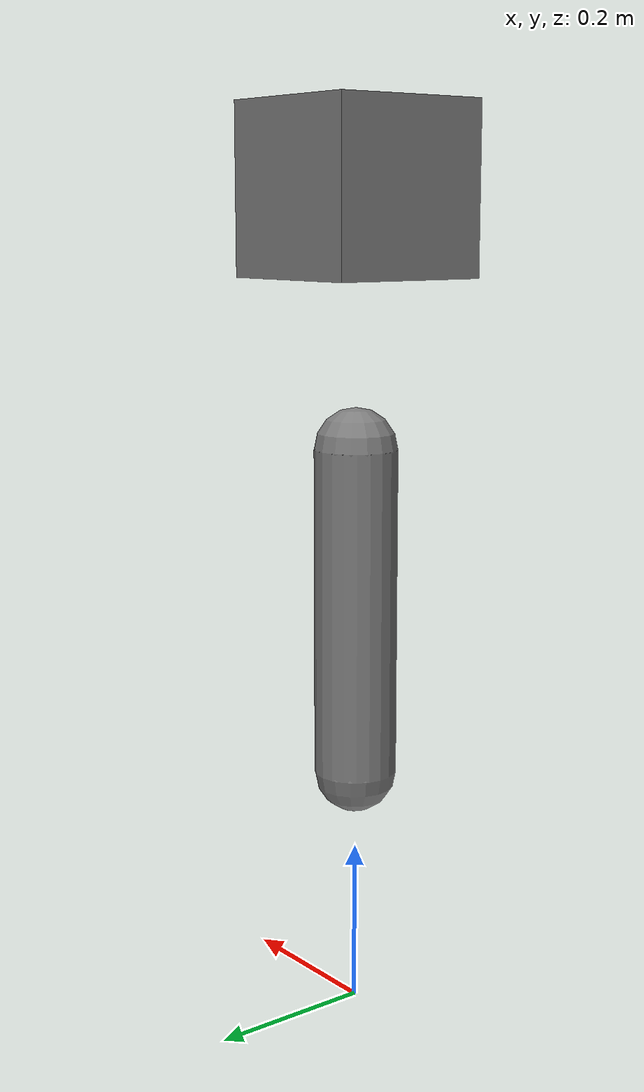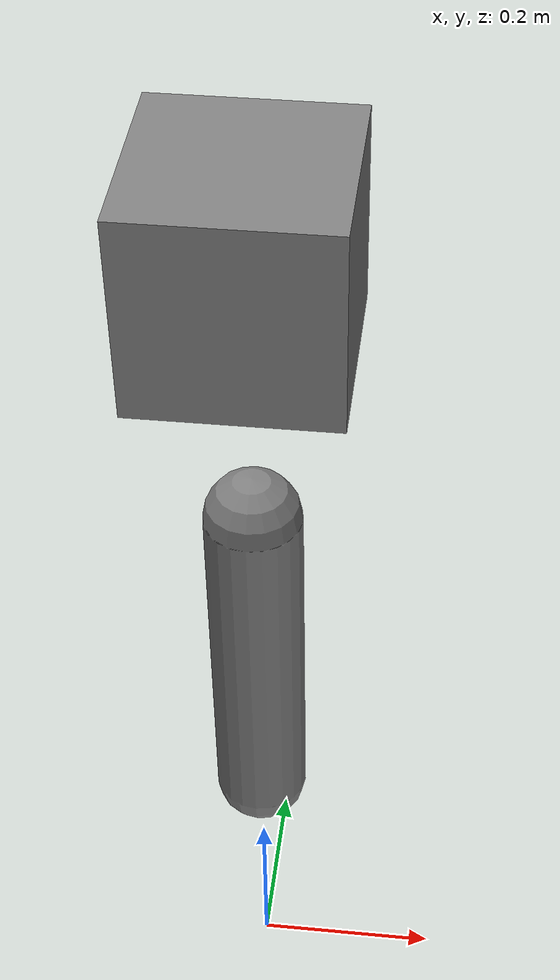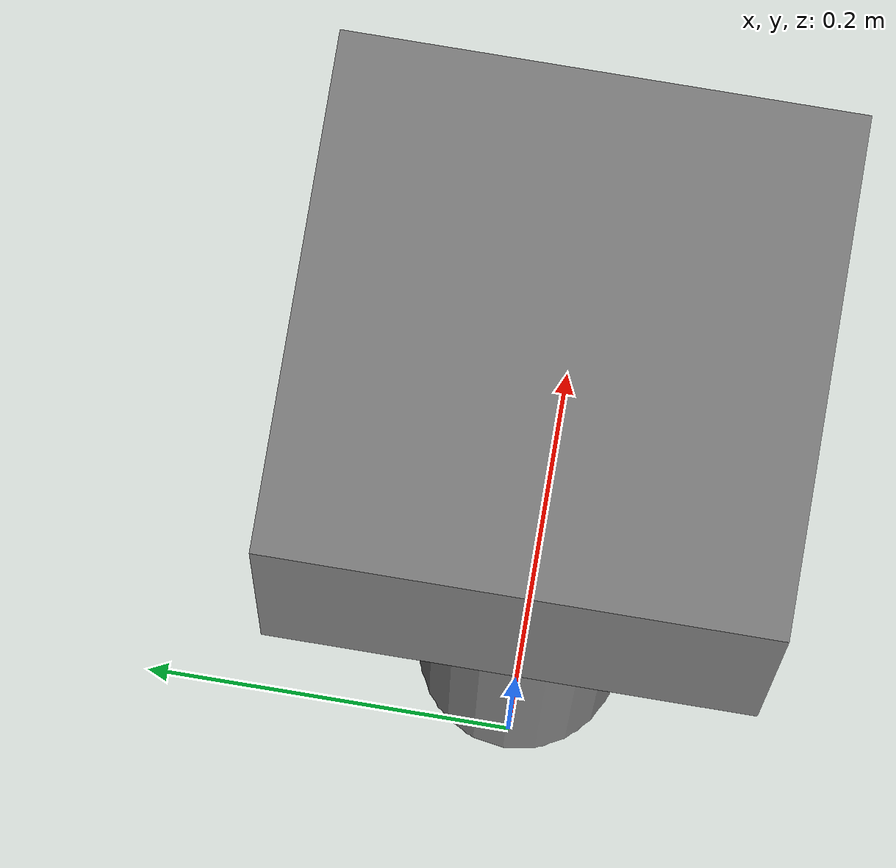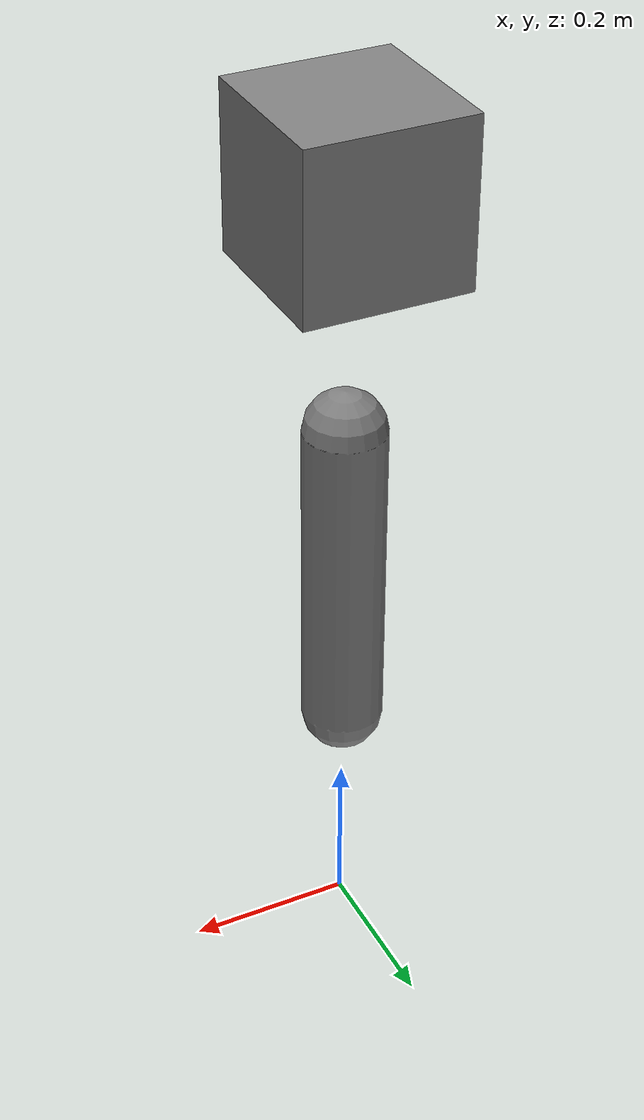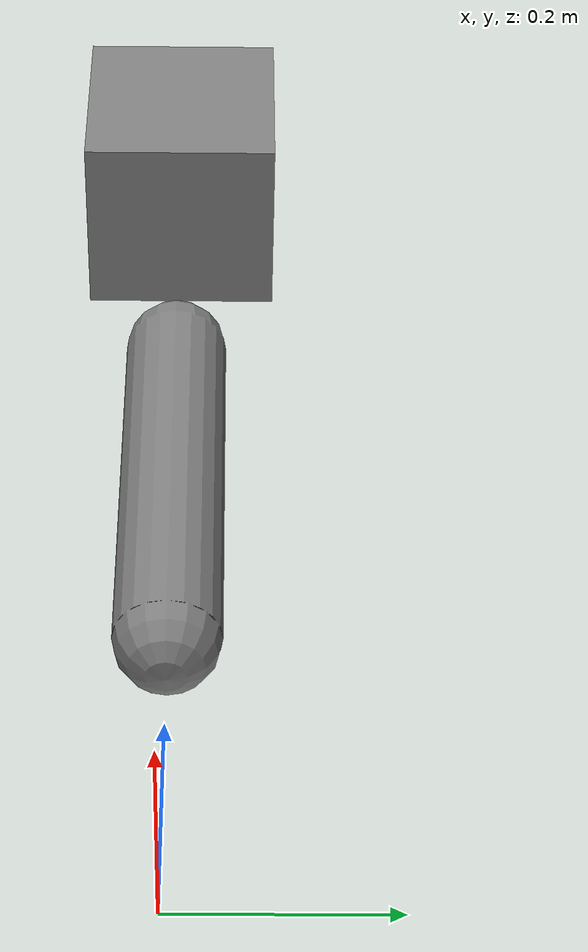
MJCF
<mujoco model="weld_test">
            <option gravity="0 0 -9.81" timestep="0.001"/>
            <worldbody>
                <body name="base" pos="0 0 1">
                    <freejoint/>
                    <geom type="box" size="0.1 0.1 0.1" mass="1.0"/>
                </body>
                <body name="arm" pos="0 0 0.5">
                    <freejoint/>
                    <geom type="capsule" size="0.05 0.2" mass="0.5"/>
                </body>
            </worldbody>
            <equality>
                <weld body1="base" body2="arm" anchor="0 0 -0.1"/>
            </equality>
        </mujoco>
